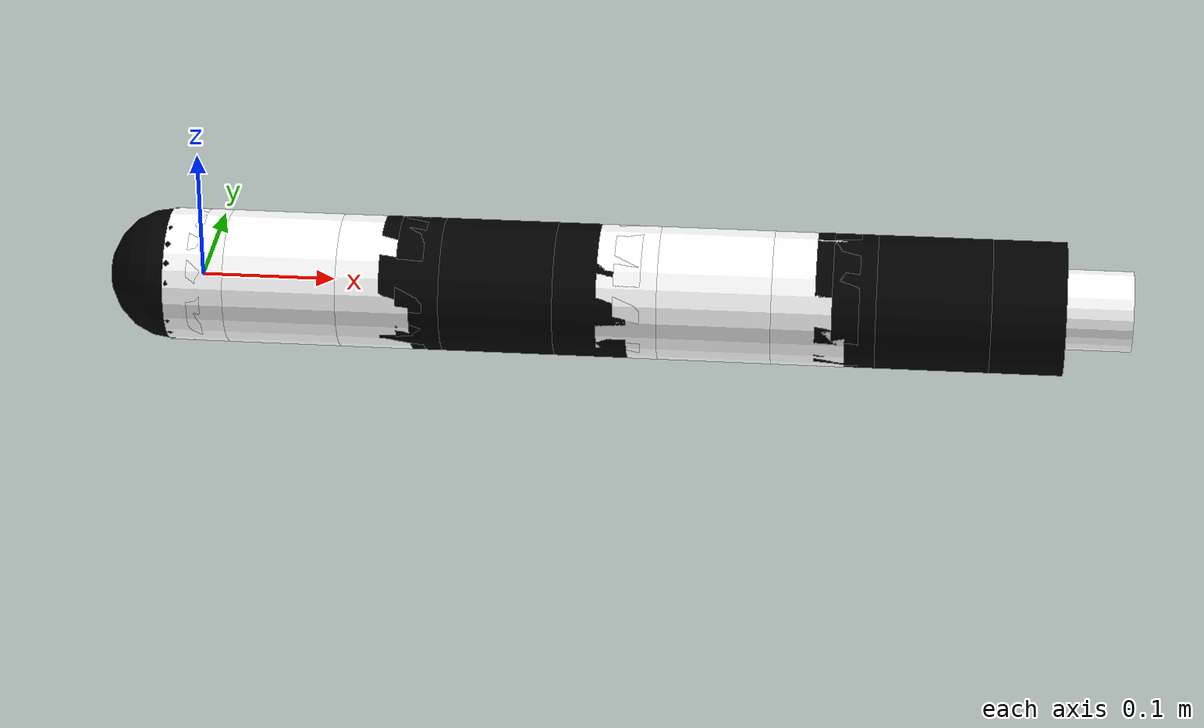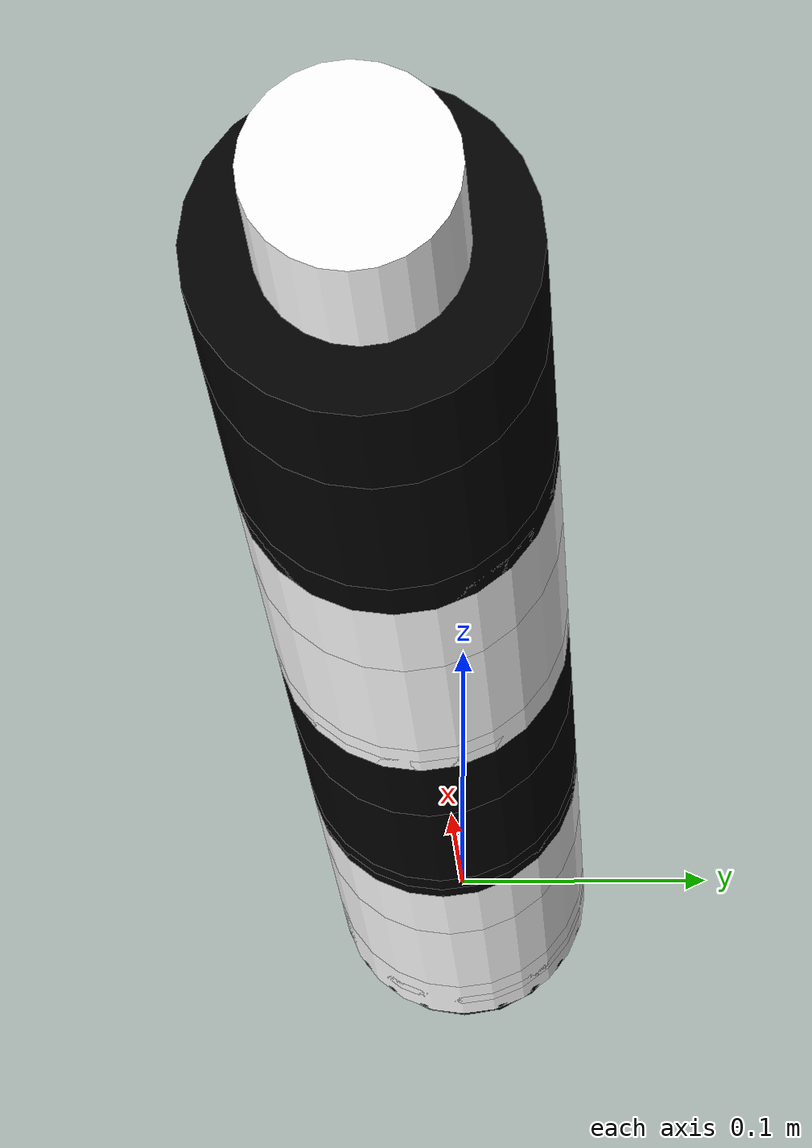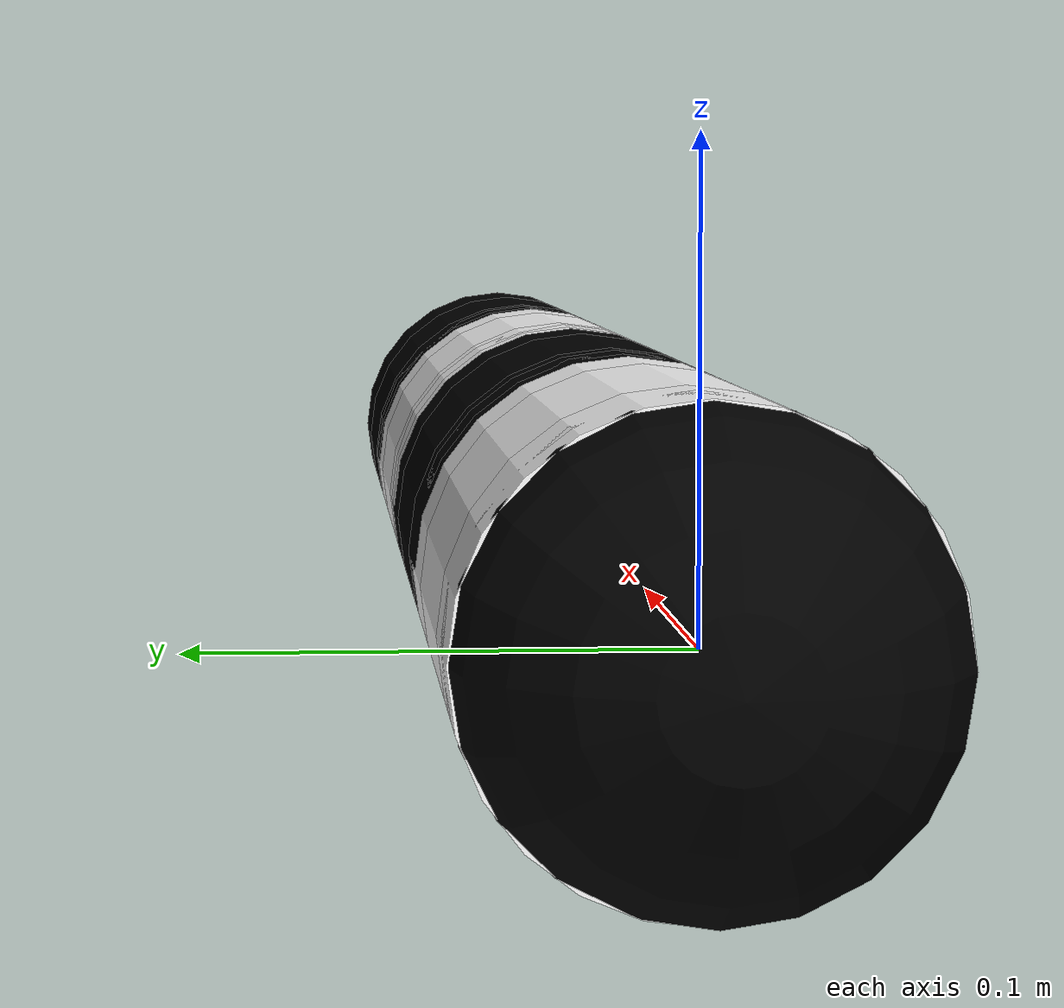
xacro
<?xml version="1.0" encoding="UTF-8"?>
<!-- Follows updated snakebot but with added inertial components-->
<robot xmlns:xacro = "http://www.ros.org/wiki/xacro" name = "test_snakebot">
    <material name = "white">
        <color rgba = "1 1 1 1"/>
    </material>
    <material name = "black">
        <color rgba = "0 0 0 1"/>
    </material>
    <link name = "head">
        <visual>
            <origin rpy = "0 1.5708 0" xyz = "0 0 0"/>
            <geometry>
                <sphere radius = "0.05"/>
            </geometry>
            <material name = "black"/>
        </visual>
    </link>
    <!-- TODO: UPDATE TO INCLUDE FRICTION + DYNAMICS + INERTIA COMPONENTS FOR LINK-->
    <!-- MODULE ONE-->
    <!-- First Joint -->
    <!-- Bottom Bracket-->
    <link name = "base_link">
        <visual>
            <origin rpy = "0 1.5708 0" xyz = "0 0 0"/>
            <geometry>
                <cylinder radius = "0.05" length = "0.01"/>
            </geometry>
            <material name = "white"/>
        </visual>
    </link>
    <joint name = "head_to_base" type = "fixed">
        <parent link = "base_link"/>
        <child link = "head"/>
        <origin xyz = "-0.02 0 0"/>
    </joint>

    <link name = "m1_bottom_bracket_one">
        <visual>
            <origin rpy = "0 1.5708 0" xyz = "0 0 0"/>
            <geometry>
                <cylinder radius = "0.05" length = "0.045"/>
            </geometry>
            <material name = "white"/>
        </visual>
        <collision>
            <origin rpy = "0 1.5708 0" xyz = "0 0 0"/>
            <geometry>
                <cylinder radius = "0.05" length = "0.045"/>
            </geometry>
        </collision>
        <inertial>
            <origin rpy = "0 1.5708 0" xyz = "0 0 0"/>
            <mass value = "0.1"/>
            <inertia ixx = "0.0001" ixy = "0" ixz = "0" iyy = "0.0001" iyz = "0" izz = "0.0001"/>
        </inertial>
    </link>
    <joint name = "m1_joint_zero" type = "prismatic">
        <parent link = "base_link"/>
        <child link = "m1_bottom_bracket_one"/>
        <axis xyz = "1 0 0"/>
        <limit lower = "0" upper = "0.02" effort = "1" velocity = "0.01"/>
        <origin rpy = "0 0 0" xyz = "0 0 0"/>
        <dynamics damping = "0.0" friction = "0.01"/>
    </joint>

    <!-- Second Joint - Additional Revolute Joint -->
    <link name = "m1_virtual_link_zero"></link>
    <joint name = "m1_joint_one" type = "revolute">
        <parent link = "m1_bottom_bracket_one"/>
        <child link = "m1_virtual_link_zero"/>
        <axis xyz = "0 0 1"/>
        <limit lower = "-0.0873" upper = "0.0873" effort = "1" velocity = "0.01"/>
    </joint>

    <!-- Third Joint - rolling -->
    <link name = "m1_virtual_link_one"></link>
    <joint name = "m1_joint_two" type = "revolute">
        <parent link = "m1_virtual_link_zero"/>
        <child link = "m1_virtual_link_one"/>
        <axis xyz = "1 0 0"/>
        <limit lower = "-0.2618" upper = "0.2618" effort = "1" velocity = "0.01"/>
        <origin xyz = "0.02 0 0"/>
    </joint>

    <!-- Fourth Joint Fixed - Prismatic -->
    <link name = "m1_middle_bracket">
        <visual>
            <origin rpy = "0 1.5708 0" xyz = "0 0 0"/>
            <geometry>
                <cylinder radius = "0.05" length = "0.085"/>
            </geometry>
            <material name = "white"/>
        </visual>
        <collision>
            <origin rpy = "0 1.5708 0" xyz = "0 0 0"/>
            <geometry>
                <cylinder radius = "0.05" length = "0.07"/>
            </geometry>
        </collision>
        <inertial>
            <origin rpy = "0 1.5708 0" xyz = "0 0 0"/>
            <mass value = "0.1"/>
            <inertia ixx = "0.0001" ixy = "0" ixz = "0" iyy = "0.0001" iyz = "0" izz = "0.0001"/>
        </inertial>
    </link>
    <joint name = "m1_third_joint" type = "fixed">
        <parent link = "m1_virtual_link_one"/>
        <child link = "m1_middle_bracket"/>
        <origin rpy = "0 0 0" xyz = "0.045 0 0"/>
    </joint>

    <!--Fourth Joint - Revolute-->
    <link name = "m1_virtual_link_two"></link>
    <joint name = "m1_fourth_joint" type = "fixed">
        <parent link = "m1_middle_bracket"/>
        <child link = "m1_virtual_link_two"/>
        <origin rpy = "0 0 0" xyz = "0.015 0 0"/>
    </joint>

    <!--Fifth Joint - Revolute -->
    <link name = "m1_top_bracket">
        <visual>
            <origin rpy = "0 1.5708 0" xyz = "0 0 0"/>
            <geometry>
                <cylinder radius = "0.05" length = "0.055"/>
            </geometry>
            <material name = "white"/>
        </visual>
        <!-- Collision - only for the top half! -->
        <collision>
            <origin rpy = "0 1.5708 0" xyz = "0.025 0 0"/>
            <geometry>
                <cylinder radius = "0.05" length = "0.055"/>
            </geometry>
        </collision>
        <inertial>
            <origin rpy = "0 1.5708 0" xyz = "0 0 0"/>
            <mass value = "0.1"/>
            <inertia ixx = "0.0001" ixy = "0" ixz = "0" iyy = "0.0001" iyz = "0" izz = "0.0001"/>
        </inertial>
    </link>
    <link name = "m1_virtual_link"/>
    <joint name = "m1_joint_three" type = "revolute">
        <parent link = "m1_virtual_link_two"/>
        <child link = "m1_virtual_link"/>
        <axis xyz = "0 0 1"/>
        <limit lower = "-0.5236" upper = "0.5236" effort = "1" velocity = "0.01"/>
        <origin rpy = "0 0 0" xyz = "0 0 0"/>
    </joint>
    <joint name = "m1_joint_four" type = "revolute">
        <parent link = "m1_virtual_link"/>
        <child link = "m1_top_bracket"/>
        <axis xyz = "0 1 0"/>
        <limit lower = "-0.5236" upper = "0.5236" effort = "1" velocity = "0.01"/>
        <origin rpy = "0 0 0" xyz = "0.055 0 0"/>
    </joint>

    <!-- adding infinitesimally small link-->

    <!-- Module Two-->
    <!-- Final Fixed Joint-->
    <link name = "m2_base_link">
        <visual>
            <origin rpy = "0 1.5708 0" xyz = "0 0 0"/>
            <geometry>
                <cylinder radius = "0.05" length = "0.02"/>
            </geometry>
            <material name = "black"/>
        </visual>
    </link>
    <joint name = "m1_final_joint" type = "fixed">
        <parent link = "m1_top_bracket"/>
        <child link = "m2_base_link"/>
        <origin xyz = "0.0275 0 0"/>
    </joint>

    <!-- First Joint -->
    <!-- Bottom Bracket-->

    <link name = "m2_bottom_bracket_one">
        <visual>
            <origin rpy = "0 1.5708 0" xyz = "0 0 0"/>
            <geometry>
                <cylinder radius = "0.05" length = "0.045"/>
            </geometry>
            <material name = "black"/>
        </visual>
        <collision>
            <origin rpy = "0 1.5708 0" xyz = "0 0 0"/>
            <geometry>
                <cylinder radius = "0.05" length = "0.045"/>
            </geometry>
        </collision>
        <inertial>
            <origin rpy = "0 1.5708 0" xyz = "0 0 0"/>
            <mass value = "0.1"/>
            <inertia ixx = "0.0001" ixy = "0" ixz = "0" iyy = "0.0001" iyz = "0" izz = "0.0001"/>
        </inertial>
    </link>
    <joint name = "m2_joint_zero" type = "prismatic">
        <parent link = "m2_base_link"/>
        <child link = "m2_bottom_bracket_one"/>
        <axis xyz = "1 0 0"/>
        <limit lower = "0" upper = "0.02" effort = "1" velocity = "0.01"/>
        <origin rpy = "0 0 0" xyz = "0 0 0"/>
        <dynamics damping = "0.0" friction = "0.01"/>
    </joint>

    <!-- Second Joint - Additional Revolute Joint -->
    <link name = "m2_virtual_link_zero"></link>
    <joint name = "m2_joint_one" type = "revolute">
        <parent link = "m2_bottom_bracket_one"/>
        <child link = "m2_virtual_link_zero"/>
        <axis xyz = "0 0 1"/>
        <limit lower = "-0.0873" upper = "0.0873" effort = "1" velocity = "0.01"/>
    </joint>

    <!-- Third Joint - rolling -->
    <link name = "m2_virtual_link_one"></link>
    <joint name = "m2_joint_two" type = "revolute">
        <parent link = "m2_virtual_link_zero"/>
        <child link = "m2_virtual_link_one"/>
        <axis xyz = "1 0 0"/>
        <limit lower = "-0.2618" upper = "0.2618" effort = "1" velocity = "0.01"/>
        <origin xyz = "0.02 0 0"/>
    </joint>

    <!-- Fourth Joint Fixed - Prismatic -->
    <link name = "m2_middle_bracket">
        <visual>
            <origin rpy = "0 1.5708 0" xyz = "0 0 0"/>
            <geometry>
                <cylinder radius = "0.05" length = "0.085"/>
            </geometry>
            <material name = "black"/>
        </visual>
        <collision>
            <origin rpy = "0 1.5708 0" xyz = "0 0 0"/>
            <geometry>
                <cylinder radius = "0.05" length = "0.07"/>
            </geometry>
        </collision>
    </link>
    <joint name = "m2_third_joint" type = "fixed">
        <parent link = "m2_virtual_link_one"/>
        <child link = "m2_middle_bracket"/>
        <origin rpy = "0 0 0" xyz = "0.045 0 0"/>
    </joint>

    <!--Fourth Joint - Revolute-->
    <link name = "m2_virtual_link_two"></link>
    <joint name = "m2_fourth_joint" type = "fixed">
        <parent link = "m2_middle_bracket"/>
        <child link = "m2_virtual_link_two"/>
        <origin rpy = "0 0 0" xyz = "0.015 0 0"/>
    </joint>

    <!--Fifth Joint - Revolute -->
    <link name = "m2_top_bracket">
        <visual>
            <origin rpy = "0 1.5708 0" xyz = "0 0 0"/>
            <geometry>
                <cylinder radius = "0.05" length = "0.055"/>
            </geometry>
            <material name = "black"/>
        </visual>
        <!-- Collision - only for the top half! -->
        <collision>
            <origin rpy = "0 1.5708 0" xyz = "0.025 0 0"/>
            <geometry>
                <cylinder radius = "0.05" length = "0.055"/>
            </geometry>
        </collision>
        <inertial>
            <origin rpy = "0 1.5708 0" xyz = "0 0 0"/>
            <mass value = "0.1"/>
            <inertia ixx = "0.0001" ixy = "0" ixz = "0" iyy = "0.0001" iyz = "0" izz = "0.0001"/>
        </inertial>
    </link>
    <link name = "m2_virtual_link"/>
    <joint name = "m2_joint_three" type = "revolute">
        <parent link = "m2_virtual_link"/>
        <child link = "m2_top_bracket"/>
        <axis xyz = "0 0 1"/>
        <limit lower = "-0.5236" upper = "0.5236" effort = "1" velocity = "0.01"/>
        <origin rpy = "0 0 0" xyz = "0 0 0"/>
    </joint>
    <joint name = "m2_joint_four" type = "revolute">
        <parent link = "m2_virtual_link_two"/>
        <child link = "m2_virtual_link"/>
        <axis xyz = "0 1 0"/>
        <limit lower = "-0.5236" upper = "0.5236" effort = "1" velocity = "0.01"/>
        <origin rpy = "0 0 0" xyz = "0.055 0 0"/>
    </joint>

    <!-- Module Three -->
    <!-- Final Fixed Joint-->
    <link name = "m3_base_link">
        <visual>
            <origin rpy = "0 1.5708 0" xyz = "0 0 0"/>
            <geometry>
                <cylinder radius = "0.05" length = "0.02"/>
            </geometry>
            <material name = "white"/>
        </visual>
    </link>
    <joint name = "m2_final_joint" type = "fixed">
        <parent link = "m2_top_bracket"/>
        <child link = "m3_base_link"/>
        <origin xyz = "0.0275 0 0"/>
    </joint>

    <link name = "m3_bottom_bracket_one">
        <visual>
            <origin rpy = "0 1.5708 0" xyz = "0 0 0"/>
            <geometry>
                <cylinder radius = "0.05" length = "0.045"/>
            </geometry>
            <material name = "white"/>
        </visual>
        <collision>
            <origin rpy = "0 1.5708 0" xyz = "0 0 0"/>
            <geometry>
                <cylinder radius = "0.05" length = "0.045"/>
            </geometry>
        </collision>
        <inertial>
            <origin rpy = "0 1.5708 0" xyz = "0 0 0"/>
            <mass value = "0.1"/>
            <inertia ixx = "0.0001" ixy = "0" ixz = "0" iyy = "0.0001" iyz = "0" izz = "0.0001"/>
        </inertial>
    </link>
    <joint name = "m3_joint_zero" type = "prismatic">
        <parent link = "m3_base_link"/>
        <child link = "m3_bottom_bracket_one"/>
        <axis xyz = "1 0 0"/>
        <limit lower = "0" upper = "0.02" effort = "1" velocity = "0.01"/>
        <origin rpy = "0 0 0" xyz = "0 0 0"/>
        <dynamics damping = "0.0" friction = "0.01"/>
    </joint>

    <!-- Second Joint - Additional Revolute Joint -->
    <link name = "m3_virtual_link_zero"></link>
    <joint name = "m3_joint_one" type = "revolute">
        <parent link = "m3_bottom_bracket_one"/>
        <child link = "m3_virtual_link_zero"/>
        <axis xyz = "0 0 1"/>
        <limit lower = "-0.0873" upper = "0.0873" effort = "1" velocity = "0.01"/>
    </joint>

    <!-- Third Joint - rolling -->
    <link name = "m3_virtual_link_one"></link>
    <joint name = "m3_joint_two" type = "revolute">
        <parent link = "m3_virtual_link_zero"/>
        <child link = "m3_virtual_link_one"/>
        <axis xyz = "1 0 0"/>
        <limit lower = "-0.2618" upper = "0.2618" effort = "1" velocity = "0.01"/>
        <origin xyz = "0.02 0 0"/>
    </joint>

    <!-- Fourth Joint Fixed - Prismatic -->
    <link name = "m3_middle_bracket">
        <visual>
            <origin rpy = "0 1.5708 0" xyz = "0 0 0"/>
            <geometry>
                <cylinder radius = "0.05" length = "0.085"/>
            </geometry>
            <material name = "white"/>
        </visual>
        <collision>
            <origin rpy = "0 1.5708 0" xyz = "0 0 0"/>
            <geometry>
                <cylinder radius = "0.05" length = "0.07"/>
            </geometry>
        </collision>
        <inertial>
            <origin rpy = "0 1.5708 0" xyz = "0 0 0"/>
            <mass value = "0.1"/>
            <inertia ixx = "0.0001" ixy = "0" ixz = "0" iyy = "0.0001" iyz = "0" izz = "0.0001"/>
        </inertial>
    </link>
    <joint name = "m3_third_joint" type = "fixed">
        <parent link = "m3_virtual_link_one"/>
        <child link = "m3_middle_bracket"/>
        <origin rpy = "0 0 0" xyz = "0.045 0 0"/>
    </joint>

    <!--Fourth Joint - Revolute-->
    <link name = "m3_virtual_link_two"></link>
    <joint name = "m3_fourth_joint" type = "fixed">
        <parent link = "m3_middle_bracket"/>
        <child link = "m3_virtual_link_two"/>
        <origin rpy = "0 0 0" xyz = "0.015 0 0"/>
    </joint>

    <!--Fifth Joint - Revolute -->
    <link name = "m3_top_bracket">
        <visual>
            <origin rpy = "0 1.5708 0" xyz = "0 0 0"/>
            <geometry>
                <cylinder radius = "0.05" length = "0.055"/>
            </geometry>
            <material name = "white"/>
        </visual>
        <!-- Collision - only for the top half! -->
        <collision>
            <origin rpy = "0 1.5708 0" xyz = "0.025 0 0"/>
            <geometry>
                <cylinder radius = "0.05" length = "0.055"/>
            </geometry>
        </collision>
        <inertial>
            <origin rpy = "0 1.5708 0" xyz = "0 0 0"/>
            <mass value = "0.1"/>
            <inertia ixx = "0.0001" ixy = "0" ixz = "0" iyy = "0.0001" iyz = "0" izz = "0.0001"/>
        </inertial>
    </link>
    <link name = "m3_virtual_link"/>
    <joint name = "m3_joint_three" type = "revolute">
        <parent link = "m3_virtual_link"/>
        <child link = "m3_top_bracket"/>
        <axis xyz = "0 0 1"/>
        <limit lower = "-0.5236" upper = "0.5236" effort = "1" velocity = "0.01"/>
        <origin rpy = "0 0 0" xyz = "0 0 0"/>
    </joint>
    <joint name = "m3_joint_four" type = "revolute">
        <parent link = "m3_virtual_link_two"/>
        <child link = "m3_virtual_link"/>
        <axis xyz = "0 1 0"/>
        <limit lower = "-0.5236" upper = "0.5236" effort = "1" velocity = "0.01"/>
        <origin rpy = "0 0 0" xyz = "0.055 0 0"/>
    </joint>

    <!-- Module Four -->
    <!-- Final Fixed Joint-->
    <link name = "m4_base_link">
        <visual>
            <origin rpy = "0 1.5708 0" xyz = "0 0 0"/>
            <geometry>
                <cylinder radius = "0.05" length = "0.02"/>
            </geometry>
            <material name = "black"/>
        </visual>
    </link>
    <joint name = "m3_final_joint" type = "fixed">
        <parent link = "m3_top_bracket"/>
        <child link = "m4_base_link"/>
        <origin xyz = "0.0275 0 0"/>
    </joint>

    <!-- First Joint -->
    <!-- Bottom Bracket-->

    <link name = "m4_bottom_bracket_one">
        <visual>
            <origin rpy = "0 1.5708 0" xyz = "0 0 0"/>
            <geometry>
                <cylinder radius = "0.05" length = "0.045"/>
            </geometry>
            <material name = "black"/>
        </visual>
        <collision>
            <origin rpy = "0 1.5708 0" xyz = "0 0 0"/>
            <geometry>
                <cylinder radius = "0.05" length = "0.045"/>
            </geometry>
        </collision>
        <inertial>
            <origin rpy = "0 1.5708 0" xyz = "0 0 0"/>
            <mass value = "0.1"/>
            <inertia ixx = "0.0001" ixy = "0" ixz = "0" iyy = "0.0001" iyz = "0" izz = "0.0001"/>
        </inertial>
    </link>
    <joint name = "m4_joint_zero" type = "prismatic">
        <parent link = "m4_base_link"/>
        <child link = "m4_bottom_bracket_one"/>
        <axis xyz = "1 0 0"/>
        <limit lower = "0" upper = "0.02" effort = "1" velocity = "0.01"/>
        <origin rpy = "0 0 0" xyz = "0 0 0"/>
        <dynamics damping = "0.0" friction = "0.01"/>
    </joint>

    <!-- Second Joint - Additional Revolute Joint -->
    <link name = "m4_virtual_link_zero"></link>
    <joint name = "m4_joint_one" type = "revolute">
        <parent link = "m4_bottom_bracket_one"/>
        <child link = "m4_virtual_link_zero"/>
        <axis xyz = "0 0 1"/>
        <limit lower = "-0.0873" upper = "0.0873" effort = "1" velocity = "0.01"/>
    </joint>

    <!-- Third Joint - rolling -->
    <link name = "m4_virtual_link_one"></link>
    <joint name = "m4_joint_two" type = "revolute">
        <parent link = "m4_virtual_link_zero"/>
        <child link = "m4_virtual_link_one"/>
        <axis xyz = "1 0 0"/>
        <limit lower = "-0.2618" upper = "0.2618" effort = "1" velocity = "0.01"/>
        <origin xyz = "0.02 0 0"/>
    </joint>

    <!-- Fourth Joint Fixed - Prismatic -->
    <link name = "m4_middle_bracket">
        <visual>
            <origin rpy = "0 1.5708 0" xyz = "0 0 0"/>
            <geometry>
                <cylinder radius = "0.05" length = "0.085"/>
            </geometry>
            <material name = "black"/>
        </visual>
        <collision>
            <origin rpy = "0 1.5708 0" xyz = "0 0 0"/>
            <geometry>
                <cylinder radius = "0.05" length = "0.07"/>
            </geometry>
        </collision>
        <inertial>
            <origin rpy = "0 1.5708 0" xyz = "0 0 0"/>
            <mass value = "0.1"/>
            <inertia ixx = "0.0001" ixy = "0" ixz = "0" iyy = "0.0001" iyz = "0" izz = "0.0001"/>
        </inertial>
    </link>
    <joint name = "m4_third_joint" type = "fixed">
        <parent link = "m4_virtual_link_one"/>
        <child link = "m4_middle_bracket"/>
        <origin rpy = "0 0 0" xyz = "0.045 0 0"/>
    </joint>

    <!--Fourth Joint - Revolute-->
    <link name = "m4_virtual_link_two"></link>
    <joint name = "m4_fourth_joint" type = "fixed">
        <parent link = "m4_middle_bracket"/>
        <child link = "m4_virtual_link_two"/>
        <origin rpy = "0 0 0" xyz = "0.015 0 0"/>
    </joint>

    <!--Fifth Joint - Revolute -->
    <link name = "m4_top_bracket">
        <visual>
            <origin rpy = "0 1.5708 0" xyz = "0 0 0"/>
            <geometry>
                <cylinder radius = "0.05" length = "0.055"/>
            </geometry>
            <material name = "black"/>
        </visual>
        <!-- Collision - only for the top half! -->
        <collision>
            <origin rpy = "0 1.5708 0" xyz = "0.025 0 0"/>
            <geometry>
                <cylinder radius = "0.05" length = "0.055"/>
            </geometry>
        </collision>
        <inertial>
            <origin rpy = "0 1.5708 0" xyz = "0 0 0"/>
            <mass value = "0.1"/>
            <inertia ixx = "0.0001" ixy = "0" ixz = "0" iyy = "0.0001" iyz = "0" izz = "0.0001"/>
        </inertial>
    </link>
    <link name = "m4_virtual_link"/>
    <joint name = "m4_joint_three" type = "revolute">
        <parent link = "m4_virtual_link"/>
        <child link = "m4_top_bracket"/>
        <axis xyz = "0 0 1"/>
        <limit lower = "-0.5236" upper = "0.5236" effort = "1" velocity = "0.01"/>
        <origin rpy = "0 0 0" xyz = "0 0 0"/>
    </joint>
    <joint name = "m4_joint_four" type = "revolute">
        <parent link = "m4_virtual_link_two"/>
        <child link = "m4_virtual_link"/>
        <axis xyz = "0 1 0"/>
        <limit lower = "-0.5236" upper = "0.5236" effort = "1" velocity = "0.01"/>
        <origin rpy = "0 0 0" xyz = "0.055 0 0"/>
    </joint>

    <link name = "tail">
        <visual>
            <origin rpy = "0 1.5708 0" xyz = "0 0 0"/>
            <geometry>
                <cylinder radius = "0.03" length = "0.1"/>
            </geometry>
            <material name = "white"/>
        </visual>
    </link>
    <joint name = "m4_to_tail" type = "fixed">
        <parent link = "m4_top_bracket"/>
        <child link = "tail"/>
        <origin xyz = "0.0275 0 0"/>
    </joint>
</robot>
